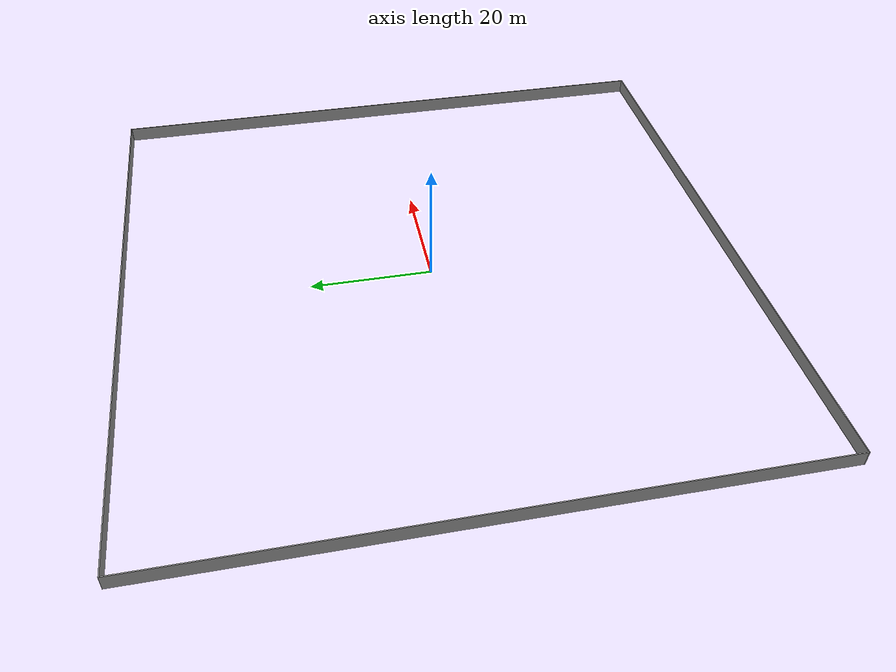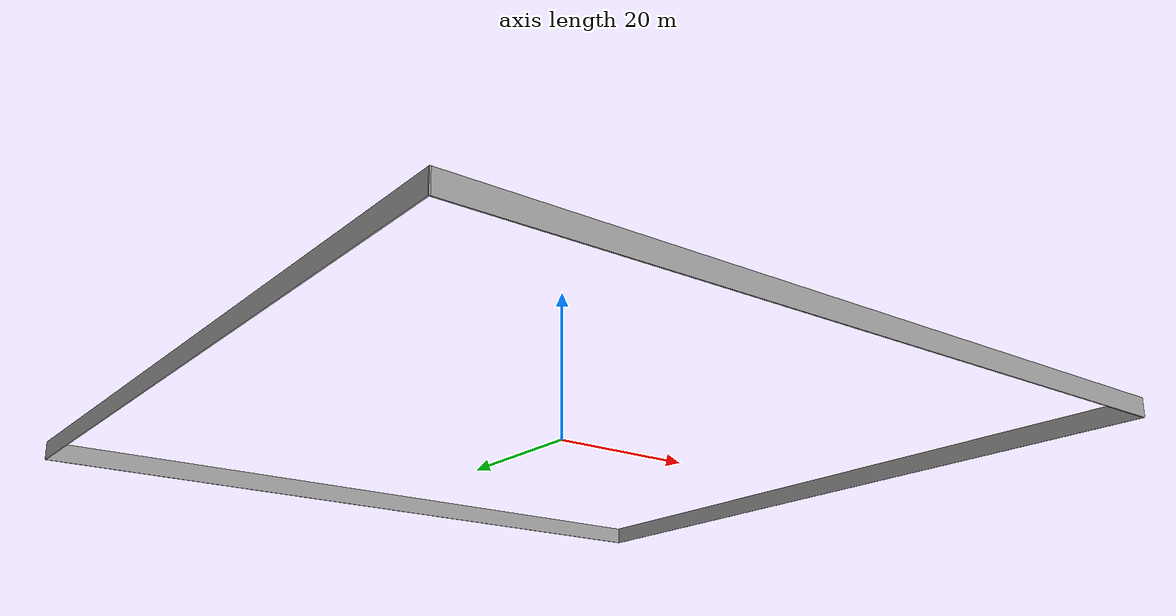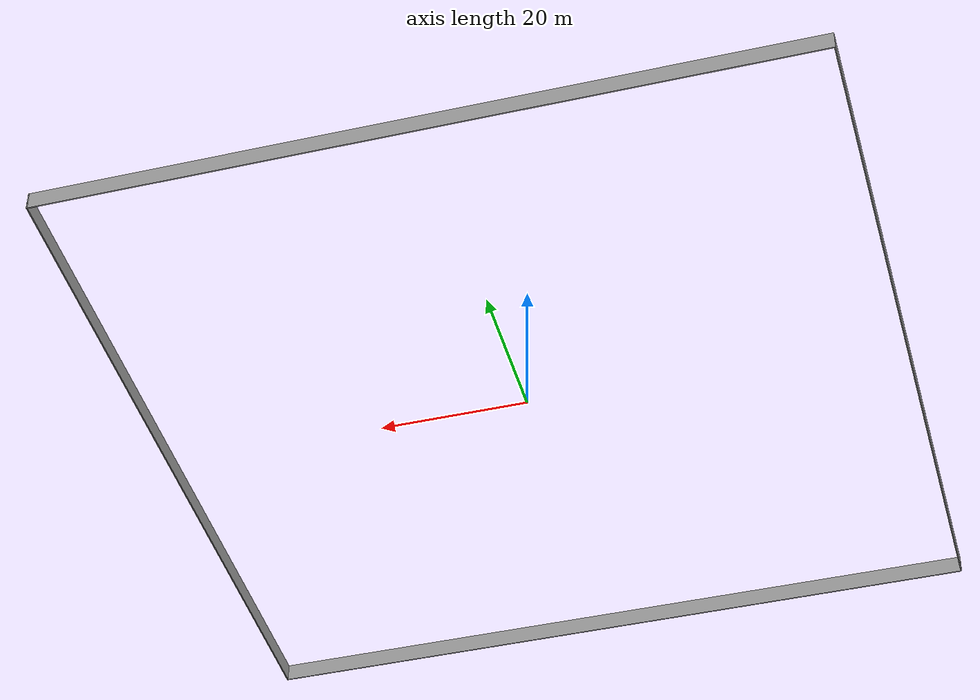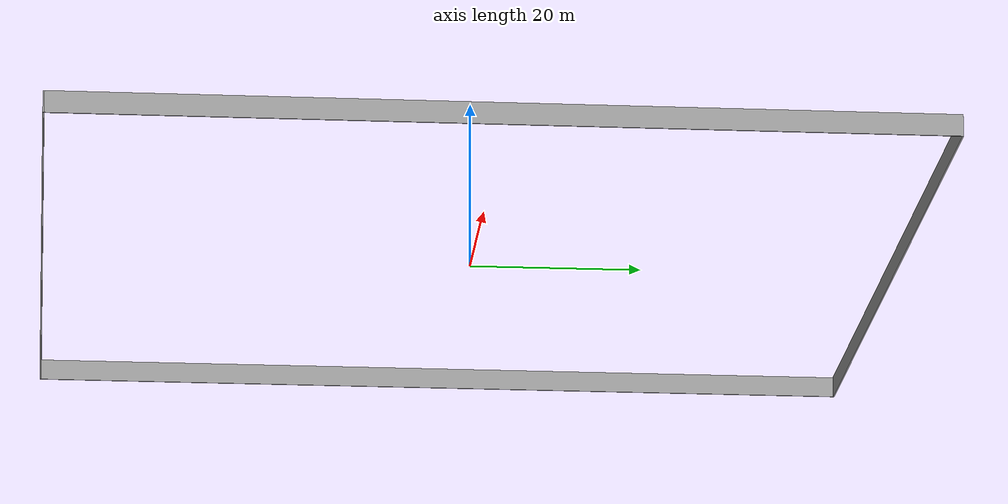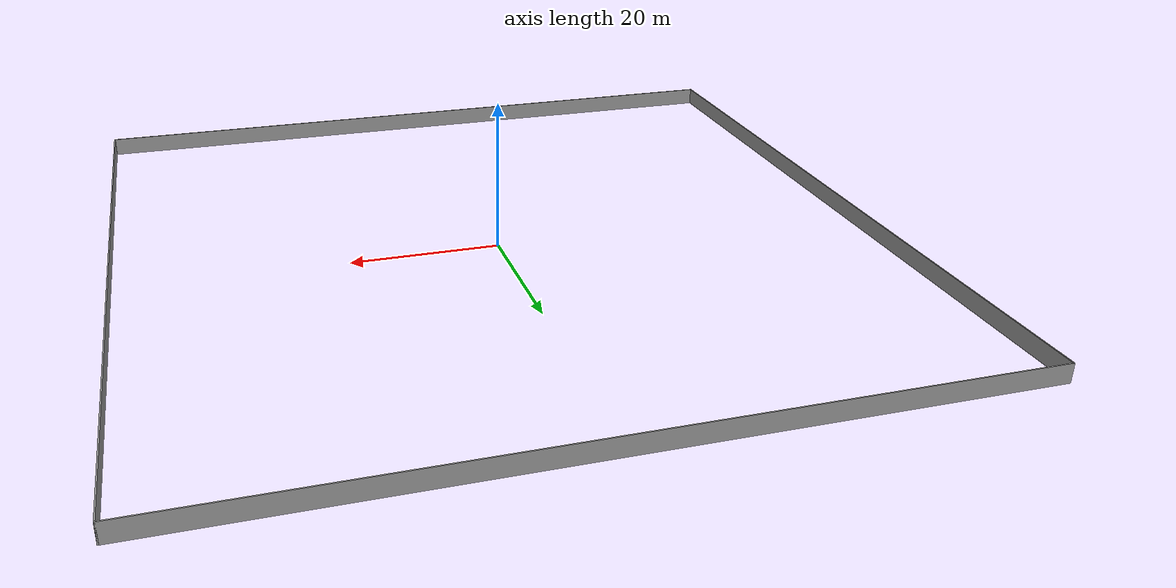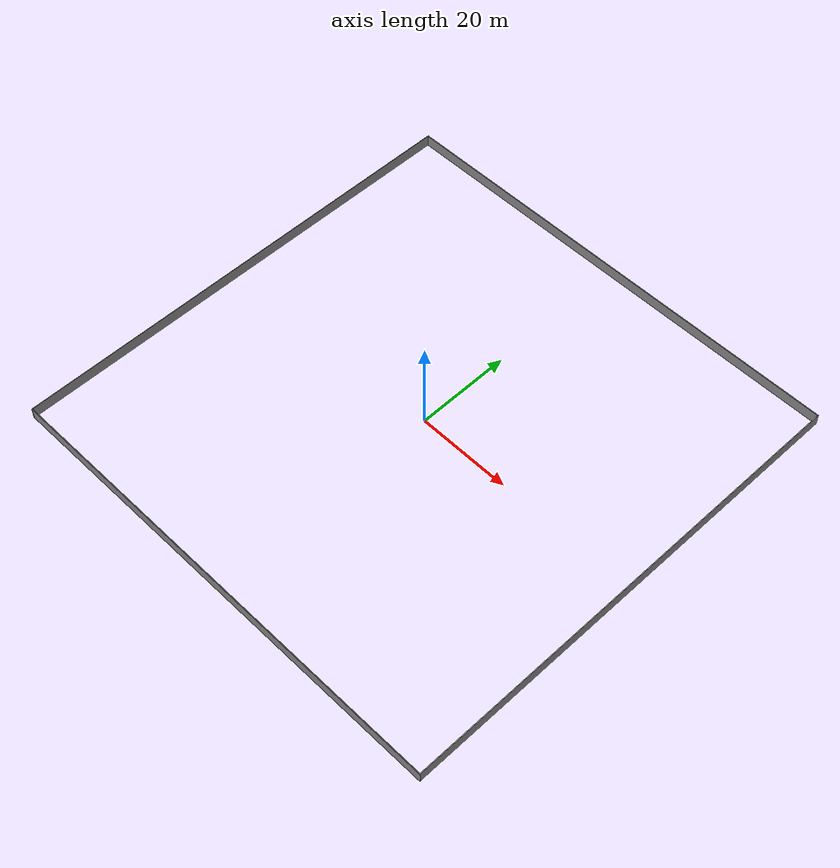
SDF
<?xml version='1.0'?>
<sdf version='1.6'>
  <model name='walls'>
    <pose frame=''>0 0 0 0 -0 0</pose>
    <link name='Wall_11'>
      <collision name='Wall_11_Collision'>
        <geometry>
          <box>
            <size>100.15 0.15 2.5</size>
          </box>
        </geometry>
        <pose frame=''>0 0 1.25 0 -0 0</pose>
      </collision>
      <visual name='Wall_11_Visual'>
        <pose frame=''>0 0 1.25 0 -0 0</pose>
        <geometry>
          <box>
            <size>100.15 0.15 2.5</size>
          </box>
        </geometry>
        <material>
          <script>
            <uri>file://media/materials/scripts/gazebo.material</uri>
            <name>Gazebo/Grey</name>
          </script>
          <ambient>1 1 1 1</ambient>
        </material>
        <meta>
          <layer>0</layer>
        </meta>
      </visual>
      <pose frame=''>0 50 0 0 -0 0</pose>
    </link>
    <link name='Wall_5'>
      <collision name='Wall_5_Collision'>
        <geometry>
          <box>
            <size>100.15 0.15 2.5</size>
          </box>
        </geometry>
        <pose frame=''>0 0 1.25 0 -0 0</pose>
      </collision>
      <visual name='Wall_5_Visual'>
        <pose frame=''>0 0 1.25 0 -0 0</pose>
        <geometry>
          <box>
            <size>100.15 0.15 2.5</size>
          </box>
        </geometry>
        <material>
          <script>
            <uri>file://media/materials/scripts/gazebo.material</uri>
            <name>Gazebo/Grey</name>
          </script>
          <ambient>1 1 1 1</ambient>
        </material>
        <meta>
          <layer>0</layer>
        </meta>
      </visual>
      <pose frame=''>50 0 0 0 -0 -1.5708</pose>
    </link>
    <link name='Wall_7'>
      <collision name='Wall_7_Collision'>
        <geometry>
          <box>
            <size>100.15 0.15 2.5</size>
          </box>
        </geometry>
        <pose frame=''>0 0 1.25 0 -0 0</pose>
      </collision>
      <visual name='Wall_7_Visual'>
        <pose frame=''>0 0 1.25 0 -0 0</pose>
        <geometry>
          <box>
            <size>100.15 0.15 2.5</size>
          </box>
        </geometry>
        <material>
          <script>
            <uri>file://media/materials/scripts/gazebo.material</uri>
            <name>Gazebo/Grey</name>
          </script>
          <ambient>1 1 1 1</ambient>
        </material>
        <meta>
          <layer>0</layer>
        </meta>
      </visual>
      <pose frame=''>0 -50 0 0 -0 3.14159</pose>
    </link>
    <link name='Wall_9'>
      <collision name='Wall_9_Collision'>
        <geometry>
          <box>
            <size>100.15 0.15 2.5</size>
          </box>
        </geometry>
        <pose frame=''>0 0 1.25 0 -0 0</pose>
      </collision>
      <visual name='Wall_9_Visual'>
        <pose frame=''>0 0 1.25 0 -0 0</pose>
        <geometry>
          <box>
            <size>100.15 0.15 2.5</size>
          </box>
        </geometry>
        <material>
          <script>
            <uri>file://media/materials/scripts/gazebo.material</uri>
            <name>Gazebo/Grey</name>
          </script>
          <ambient>1 1 1 1</ambient>
        </material>
        <meta>
          <layer>0</layer>
        </meta>
      </visual>
      <pose frame=''>-50 0 0 0 -0 1.5708</pose>
    </link>
    <static>1</static>
  </model>
</sdf>
